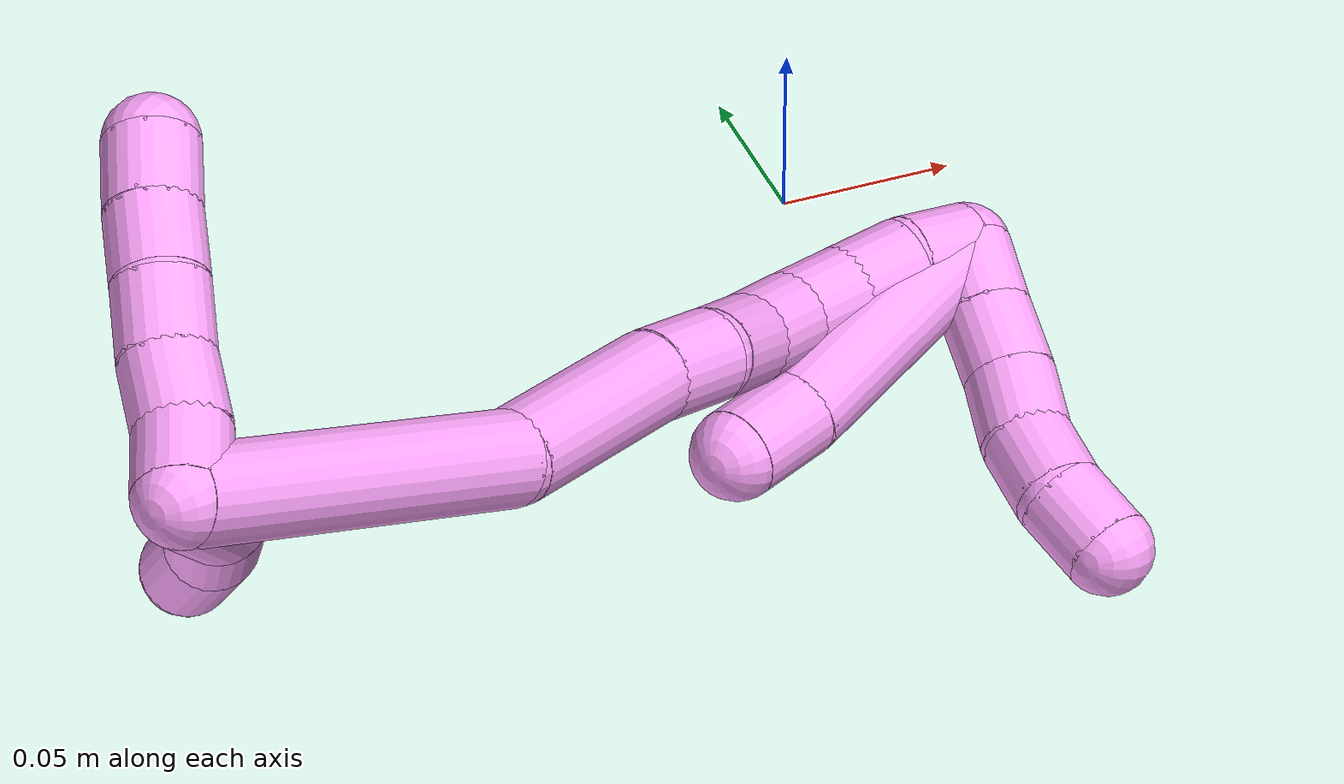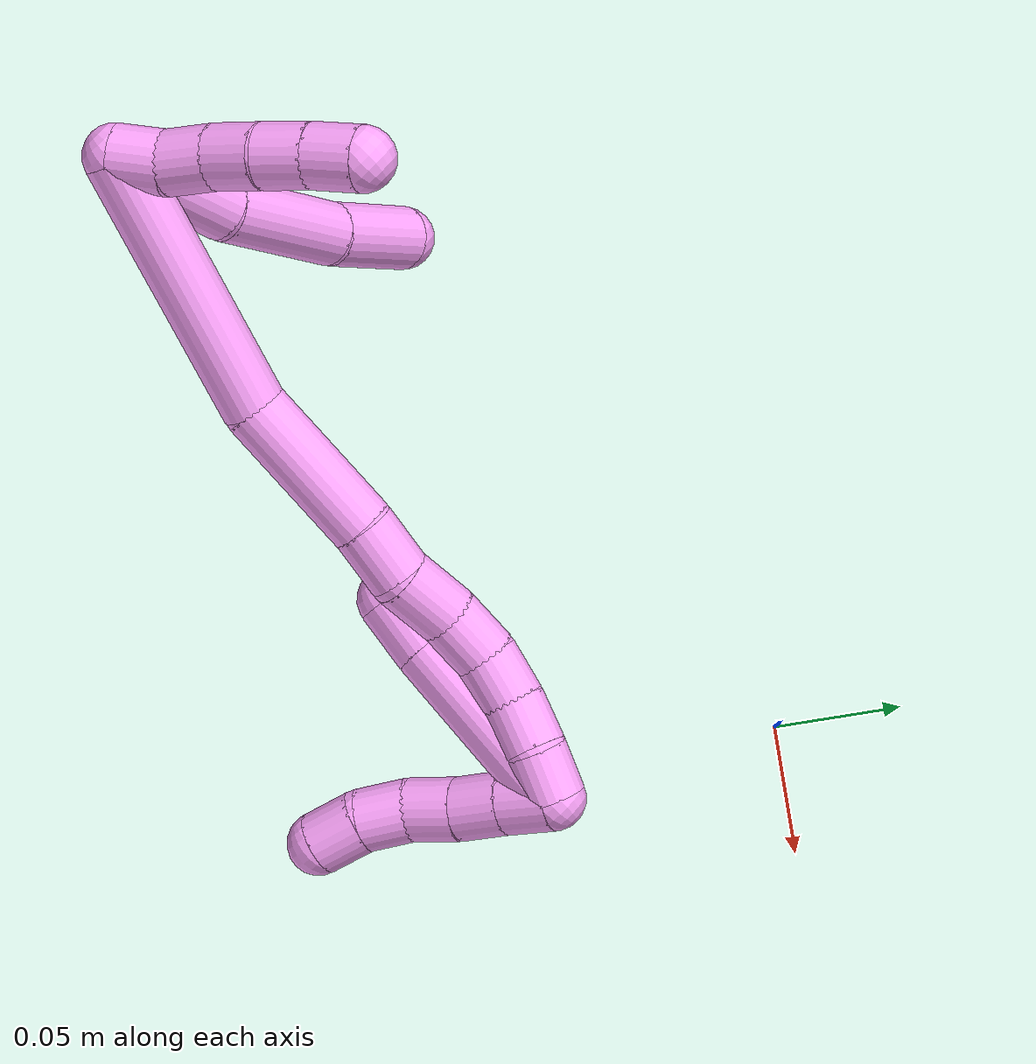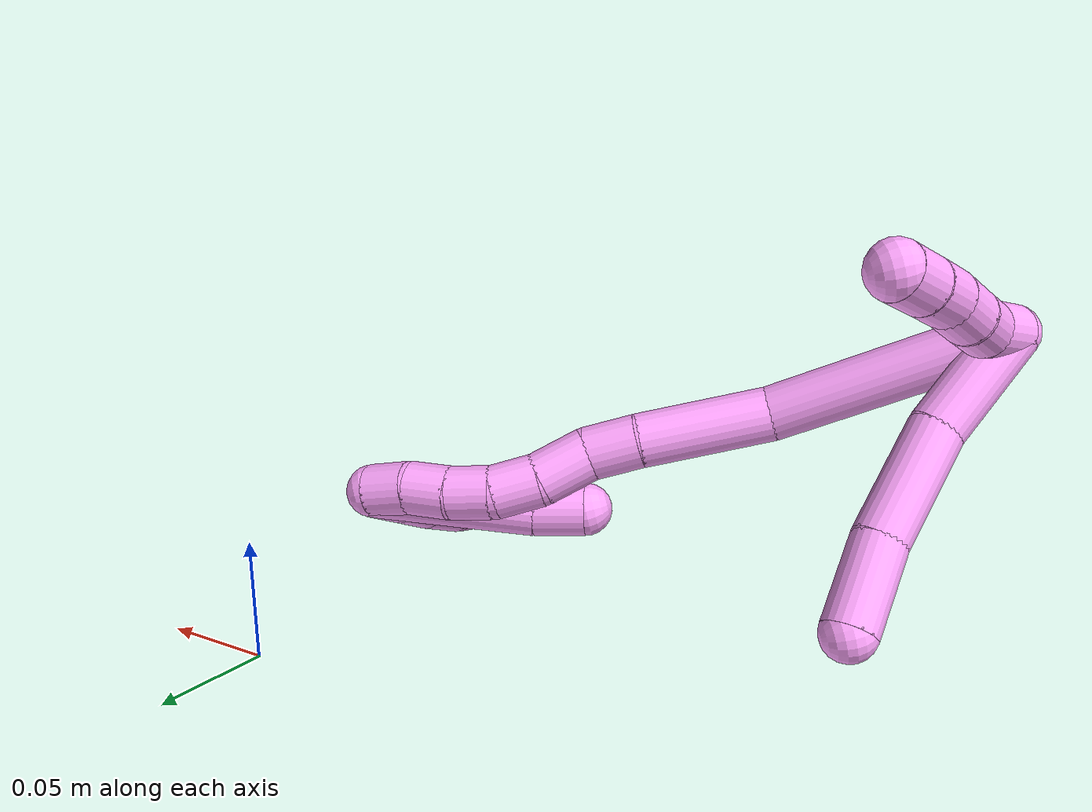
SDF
<sdf version="1.7">
 <world name="default">
  <model name="4">
   <static>0</static>
   <link name="4">
    <collision name="collision-cylinder-e_1_2_8">
     <pose>-0.015639 -0.005477 -0.021484 2.89198 -0.614343 -2.38834</pose>
     <geometry><cylinder><radius>0.0125</radius><length>0.054264</length></cylinder></geometry>
     <surface>
      <friction><ode><mu>1.16</mu><mu2>1.16</mu2><slip1>0</slip1><slip2>0</slip2></ode></friction>
      <contact><ode><kp>1e+06</kp><kd>1</kd><max_vel>0</max_vel><min_depth>0.001</min_depth></ode></contact>
     </surface>
    </collision>
    <visual name="visual-cylinder-e_1_2_8">
     <pose>-0.015639 -0.005477 -0.021484 2.89198 -0.614343 -2.38834</pose>
     <geometry><cylinder><radius>0.0125</radius><length>0.054264</length></cylinder></geometry>
     <material><ambient>1 0.65098 0.996078 1</ambient></material>
    </visual>
    <collision name="collision-cylinder-e_2_8_9">
     <pose>-0.051054 -0.015413 -0.061383 2.90403 -0.806771 -2.59627</pose>
     <geometry><cylinder><radius>0.0125</radius><length>0.054774</length></cylinder></geometry>
     <surface>
      <friction><ode><mu>1.16</mu><mu2>1.16</mu2><slip1>0</slip1><slip2>0</slip2></ode></friction>
      <contact><ode><kp>1e+06</kp><kd>1</kd><max_vel>0</max_vel><min_depth>0.001</min_depth></ode></contact>
     </surface>
    </collision>
    <visual name="visual-cylinder-e_2_8_9">
     <pose>-0.051054 -0.015413 -0.061383 2.90403 -0.806771 -2.59627</pose>
     <geometry><cylinder><radius>0.0125</radius><length>0.054774</length></cylinder></geometry>
     <material><ambient>1 0.65098 0.996078 1</ambient></material>
    </visual>
    <collision name="collision-cylinder-e_3_9_6">
     <pose>-0.08744 -0.022852 -0.091403 2.89019 -0.945919 -2.65737</pose>
     <geometry><cylinder><radius>0.0125</radius><length>0.040962</length></cylinder></geometry>
     <surface>
      <friction><ode><mu>1.16</mu><mu2>1.16</mu2><slip1>0</slip1><slip2>0</slip2></ode></friction>
      <contact><ode><kp>1e+06</kp><kd>1</kd><max_vel>0</max_vel><min_depth>0.001</min_depth></ode></contact>
     </surface>
    </collision>
    <visual name="visual-cylinder-e_3_9_6">
     <pose>-0.08744 -0.022852 -0.091403 2.89019 -0.945919 -2.65737</pose>
     <geometry><cylinder><radius>0.0125</radius><length>0.040962</length></cylinder></geometry>
     <material><ambient>1 0.65098 0.996078 1</ambient></material>
    </visual>
    <collision name="collision-cylinder-e_1_2_10">
     <pose>-0.001825 0.006498 -0.007379 -2.41962 -0.183483 0.478058</pose>
     <geometry><cylinder><radius>0.0125</radius><length>0.02</length></cylinder></geometry>
     <surface>
      <friction><ode><mu>1.16</mu><mu2>1.16</mu2><slip1>0</slip1><slip2>0</slip2></ode></friction>
      <contact><ode><kp>1e+06</kp><kd>1</kd><max_vel>0</max_vel><min_depth>0.001</min_depth></ode></contact>
     </surface>
    </collision>
    <visual name="visual-cylinder-e_1_2_10">
     <pose>-0.001825 0.006498 -0.007379 -2.41962 -0.183483 0.478058</pose>
     <geometry><cylinder><radius>0.0125</radius><length>0.02</length></cylinder></geometry>
     <material><ambient>1 0.65098 0.996078 1</ambient></material>
    </visual>
    <collision name="collision-cylinder-e_2_10_11">
     <pose>-0.005336 0.021332 -0.020017 -2.13353 -0.16948 0.305616</pose>
     <geometry><cylinder><radius>0.0125</radius><length>0.02</length></cylinder></geometry>
     <surface>
      <friction><ode><mu>1.16</mu><mu2>1.16</mu2><slip1>0</slip1><slip2>0</slip2></ode></friction>
      <contact><ode><kp>1e+06</kp><kd>1</kd><max_vel>0</max_vel><min_depth>0.001</min_depth></ode></contact>
     </surface>
    </collision>
    <visual name="visual-cylinder-e_2_10_11">
     <pose>-0.005336 0.021332 -0.020017 -2.13353 -0.16948 0.305616</pose>
     <geometry><cylinder><radius>0.0125</radius><length>0.02</length></cylinder></geometry>
     <material><ambient>1 0.65098 0.996078 1</ambient></material>
    </visual>
    <collision name="collision-cylinder-e_3_11_12">
     <pose>-0.007474 0.037936 -0.030884 -2.16694 -0.045147 0.085153</pose>
     <geometry><cylinder><radius>0.0125</radius><length>0.02</length></cylinder></geometry>
     <surface>
      <friction><ode><mu>1.16</mu><mu2>1.16</mu2><slip1>0</slip1><slip2>0</slip2></ode></friction>
      <contact><ode><kp>1e+06</kp><kd>1</kd><max_vel>0</max_vel><min_depth>0.001</min_depth></ode></contact>
     </surface>
    </collision>
    <visual name="visual-cylinder-e_3_11_12">
     <pose>-0.007474 0.037936 -0.030884 -2.16694 -0.045147 0.085153</pose>
     <geometry><cylinder><radius>0.0125</radius><length>0.02</length></cylinder></geometry>
     <material><ambient>1 0.65098 0.996078 1</ambient></material>
    </visual>
    <collision name="collision-cylinder-e_4_12_13">
     <pose>-0.009271 0.054 -0.042607 -2.23579 -0.13496 0.275986</pose>
     <geometry><cylinder><radius>0.0125</radius><length>0.02</length></cylinder></geometry>
     <surface>
      <friction><ode><mu>1.16</mu><mu2>1.16</mu2><slip1>0</slip1><slip2>0</slip2></ode></friction>
      <contact><ode><kp>1e+06</kp><kd>1</kd><max_vel>0</max_vel><min_depth>0.001</min_depth></ode></contact>
     </surface>
    </collision>
    <visual name="visual-cylinder-e_4_12_13">
     <pose>-0.009271 0.054 -0.042607 -2.23579 -0.13496 0.275986</pose>
     <geometry><cylinder><radius>0.0125</radius><length>0.02</length></cylinder></geometry>
     <material><ambient>1 0.65098 0.996078 1</ambient></material>
    </visual>
    <collision name="collision-cylinder-e_5_13_5">
     <pose>-0.011407 0.06939 -0.055182 -2.2758 -0.079185 0.171019</pose>
     <geometry><cylinder><radius>0.0125</radius><length>0.02</length></cylinder></geometry>
     <surface>
      <friction><ode><mu>1.16</mu><mu2>1.16</mu2><slip1>0</slip1><slip2>0</slip2></ode></friction>
      <contact><ode><kp>1e+06</kp><kd>1</kd><max_vel>0</max_vel><min_depth>0.001</min_depth></ode></contact>
     </surface>
    </collision>
    <visual name="visual-cylinder-e_5_13_5">
     <pose>-0.011407 0.06939 -0.055182 -2.2758 -0.079185 0.171019</pose>
     <geometry><cylinder><radius>0.0125</radius><length>0.02</length></cylinder></geometry>
     <material><ambient>1 0.65098 0.996078 1</ambient></material>
    </visual>
    <collision name="collision-cylinder-e_1_2_14">
     <pose>0.004883 -0.016322 -0.051388 2.83406 0.090316 0.567382</pose>
     <geometry><cylinder><radius>0.0125</radius><length>0.108277</length></cylinder></geometry>
     <surface>
      <friction><ode><mu>1.16</mu><mu2>1.16</mu2><slip1>0</slip1><slip2>0</slip2></ode></friction>
      <contact><ode><kp>1e+06</kp><kd>1</kd><max_vel>0</max_vel><min_depth>0.001</min_depth></ode></contact>
     </surface>
    </collision>
    <visual name="visual-cylinder-e_1_2_14">
     <pose>0.004883 -0.016322 -0.051388 2.83406 0.090316 0.567382</pose>
     <geometry><cylinder><radius>0.0125</radius><length>0.108277</length></cylinder></geometry>
     <material><ambient>1 0.65098 0.996078 1</ambient></material>
    </visual>
    <collision name="collision-cylinder-e_2_14_15">
     <pose>0.011252 -0.033158 -0.132995 3.12455 0.049143 2.47412</pose>
     <geometry><cylinder><radius>0.0125</radius><length>0.060519</length></cylinder></geometry>
     <surface>
      <friction><ode><mu>1.16</mu><mu2>1.16</mu2><slip1>0</slip1><slip2>0</slip2></ode></friction>
      <contact><ode><kp>1e+06</kp><kd>1</kd><max_vel>0</max_vel><min_depth>0.001</min_depth></ode></contact>
     </surface>
    </collision>
    <visual name="visual-cylinder-e_2_14_15">
     <pose>0.011252 -0.033158 -0.132995 3.12455 0.049143 2.47412</pose>
     <geometry><cylinder><radius>0.0125</radius><length>0.060519</length></cylinder></geometry>
     <material><ambient>1 0.65098 0.996078 1</ambient></material>
    </visual>
    <collision name="collision-cylinder-e_3_15_16">
     <pose>0.013585 -0.035307 -0.174992 3.00373 0.071072 0.951008</pose>
     <geometry><cylinder><radius>0.0125</radius><length>0.023842</length></cylinder></geometry>
     <surface>
      <friction><ode><mu>1.16</mu><mu2>1.16</mu2><slip1>0</slip1><slip2>0</slip2></ode></friction>
      <contact><ode><kp>1e+06</kp><kd>1</kd><max_vel>0</max_vel><min_depth>0.001</min_depth></ode></contact>
     </surface>
    </collision>
    <visual name="visual-cylinder-e_3_15_16">
     <pose>0.013585 -0.035307 -0.174992 3.00373 0.071072 0.951008</pose>
     <geometry><cylinder><radius>0.0125</radius><length>0.023842</length></cylinder></geometry>
     <material><ambient>1 0.65098 0.996078 1</ambient></material>
    </visual>
    <collision name="collision-cylinder-e_4_16_17">
     <pose>0.011593 -0.038319 -0.199124 3.03057 -0.224506 -2.22562</pose>
     <geometry><cylinder><radius>0.0125</radius><length>0.025502</length></cylinder></geometry>
     <surface>
      <friction><ode><mu>1.16</mu><mu2>1.16</mu2><slip1>0</slip1><slip2>0</slip2></ode></friction>
      <contact><ode><kp>1e+06</kp><kd>1</kd><max_vel>0</max_vel><min_depth>0.001</min_depth></ode></contact>
     </surface>
    </collision>
    <visual name="visual-cylinder-e_4_16_17">
     <pose>0.011593 -0.038319 -0.199124 3.03057 -0.224506 -2.22562</pose>
     <geometry><cylinder><radius>0.0125</radius><length>0.025502</length></cylinder></geometry>
     <material><ambient>1 0.65098 0.996078 1</ambient></material>
    </visual>
    <collision name="collision-cylinder-e_5_17_18">
     <pose>0.008745 -0.040348 -0.222249 3.08111 -0.000911 -0.03013</pose>
     <geometry><cylinder><radius>0.0125</radius><length>0.021581</length></cylinder></geometry>
     <surface>
      <friction><ode><mu>1.16</mu><mu2>1.16</mu2><slip1>0</slip1><slip2>0</slip2></ode></friction>
      <contact><ode><kp>1e+06</kp><kd>1</kd><max_vel>0</max_vel><min_depth>0.001</min_depth></ode></contact>
     </surface>
    </collision>
    <visual name="visual-cylinder-e_5_17_18">
     <pose>0.008745 -0.040348 -0.222249 3.08111 -0.000911 -0.03013</pose>
     <geometry><cylinder><radius>0.0125</radius><length>0.021581</length></cylinder></geometry>
     <material><ambient>1 0.65098 0.996078 1</ambient></material>
    </visual>
    <collision name="collision-cylinder-e_6_18_19">
     <pose>0.011634 -0.041602 -0.242685 3.07945 0.290859 2.72339</pose>
     <geometry><cylinder><radius>0.0125</radius><length>0.020217</length></cylinder></geometry>
     <surface>
      <friction><ode><mu>1.16</mu><mu2>1.16</mu2><slip1>0</slip1><slip2>0</slip2></ode></friction>
      <contact><ode><kp>1e+06</kp><kd>1</kd><max_vel>0</max_vel><min_depth>0.001</min_depth></ode></contact>
     </surface>
    </collision>
    <visual name="visual-cylinder-e_6_18_19">
     <pose>0.011634 -0.041602 -0.242685 3.07945 0.290859 2.72339</pose>
     <geometry><cylinder><radius>0.0125</radius><length>0.020217</length></cylinder></geometry>
     <material><ambient>1 0.65098 0.996078 1</ambient></material>
    </visual>
    <collision name="collision-cylinder-e_7_19_20">
     <pose>0.01883 -0.042759 -0.261383 3.08019 0.443393 2.87074</pose>
     <geometry><cylinder><radius>0.0125</radius><length>0.020036</length></cylinder></geometry>
     <surface>
      <friction><ode><mu>1.16</mu><mu2>1.16</mu2><slip1>0</slip1><slip2>0</slip2></ode></friction>
      <contact><ode><kp>1e+06</kp><kd>1</kd><max_vel>0</max_vel><min_depth>0.001</min_depth></ode></contact>
     </surface>
    </collision>
    <visual name="visual-cylinder-e_7_19_20">
     <pose>0.01883 -0.042759 -0.261383 3.08019 0.443393 2.87074</pose>
     <geometry><cylinder><radius>0.0125</radius><length>0.020036</length></cylinder></geometry>
     <material><ambient>1 0.65098 0.996078 1</ambient></material>
    </visual>
    <collision name="collision-cylinder-e_8_20_1">
     <pose>0.026307 -0.045682 -0.279609 2.8895 0.323129 1.81986</pose>
     <geometry><cylinder><radius>0.0125</radius><length>0.020026</length></cylinder></geometry>
     <surface>
      <friction><ode><mu>1.16</mu><mu2>1.16</mu2><slip1>0</slip1><slip2>0</slip2></ode></friction>
      <contact><ode><kp>1e+06</kp><kd>1</kd><max_vel>0</max_vel><min_depth>0.001</min_depth></ode></contact>
     </surface>
    </collision>
    <visual name="visual-cylinder-e_8_20_1">
     <pose>0.026307 -0.045682 -0.279609 2.8895 0.323129 1.81986</pose>
     <geometry><cylinder><radius>0.0125</radius><length>0.020026</length></cylinder></geometry>
     <material><ambient>1 0.65098 0.996078 1</ambient></material>
    </visual>
    <collision name="collision-cylinder-e_1_1_21">
     <pose>0.031322 -0.05655 -0.283865 1.04437 0.184523 0.106388</pose>
     <geometry><cylinder><radius>0.0125</radius><length>0.02</length></cylinder></geometry>
     <surface>
      <friction><ode><mu>1.16</mu><mu2>1.16</mu2><slip1>0</slip1><slip2>0</slip2></ode></friction>
      <contact><ode><kp>1e+06</kp><kd>1</kd><max_vel>0</max_vel><min_depth>0.001</min_depth></ode></contact>
     </surface>
    </collision>
    <visual name="visual-cylinder-e_1_1_21">
     <pose>0.031322 -0.05655 -0.283865 1.04437 0.184523 0.106388</pose>
     <geometry><cylinder><radius>0.0125</radius><length>0.02</length></cylinder></geometry>
     <material><ambient>1 0.65098 0.996078 1</ambient></material>
    </visual>
    <collision name="collision-cylinder-e_2_21_22">
     <pose>0.035194 -0.073683 -0.27431 1.07981 0.205134 0.123215</pose>
     <geometry><cylinder><radius>0.0125</radius><length>0.02</length></cylinder></geometry>
     <surface>
      <friction><ode><mu>1.16</mu><mu2>1.16</mu2><slip1>0</slip1><slip2>0</slip2></ode></friction>
      <contact><ode><kp>1e+06</kp><kd>1</kd><max_vel>0</max_vel><min_depth>0.001</min_depth></ode></contact>
     </surface>
    </collision>
    <visual name="visual-cylinder-e_2_21_22">
     <pose>0.035194 -0.073683 -0.27431 1.07981 0.205134 0.123215</pose>
     <geometry><cylinder><radius>0.0125</radius><length>0.02</length></cylinder></geometry>
     <material><ambient>1 0.65098 0.996078 1</ambient></material>
    </visual>
    <collision name="collision-cylinder-e_3_22_23">
     <pose>0.039163 -0.090255 -0.263928 0.942593 0.194451 0.099323</pose>
     <geometry><cylinder><radius>0.0125</radius><length>0.02</length></cylinder></geometry>
     <surface>
      <friction><ode><mu>1.16</mu><mu2>1.16</mu2><slip1>0</slip1><slip2>0</slip2></ode></friction>
      <contact><ode><kp>1e+06</kp><kd>1</kd><max_vel>0</max_vel><min_depth>0.001</min_depth></ode></contact>
     </surface>
    </collision>
    <visual name="visual-cylinder-e_3_22_23">
     <pose>0.039163 -0.090255 -0.263928 0.942593 0.194451 0.099323</pose>
     <geometry><cylinder><radius>0.0125</radius><length>0.02</length></cylinder></geometry>
     <material><ambient>1 0.65098 0.996078 1</ambient></material>
    </visual>
    <collision name="collision-cylinder-e_4_23_24">
     <pose>0.045286 -0.105896 -0.253354 1.01283 0.432487 0.242499</pose>
     <geometry><cylinder><radius>0.0125</radius><length>0.02</length></cylinder></geometry>
     <surface>
      <friction><ode><mu>1.16</mu><mu2>1.16</mu2><slip1>0</slip1><slip2>0</slip2></ode></friction>
      <contact><ode><kp>1e+06</kp><kd>1</kd><max_vel>0</max_vel><min_depth>0.001</min_depth></ode></contact>
     </surface>
    </collision>
    <visual name="visual-cylinder-e_4_23_24">
     <pose>0.045286 -0.105896 -0.253354 1.01283 0.432487 0.242499</pose>
     <geometry><cylinder><radius>0.0125</radius><length>0.02</length></cylinder></geometry>
     <material><ambient>1 0.65098 0.996078 1</ambient></material>
    </visual>
    <collision name="collision-cylinder-e_5_24_4">
     <pose>0.054125 -0.122147 -0.246243 1.30752 0.483343 0.373303</pose>
     <geometry><cylinder><radius>0.0125</radius><length>0.02</length></cylinder></geometry>
     <surface>
      <friction><ode><mu>1.16</mu><mu2>1.16</mu2><slip1>0</slip1><slip2>0</slip2></ode></friction>
      <contact><ode><kp>1e+06</kp><kd>1</kd><max_vel>0</max_vel><min_depth>0.001</min_depth></ode></contact>
     </surface>
    </collision>
    <visual name="visual-cylinder-e_5_24_4">
     <pose>0.054125 -0.122147 -0.246243 1.30752 0.483343 0.373303</pose>
     <geometry><cylinder><radius>0.0125</radius><length>0.02</length></cylinder></geometry>
     <material><ambient>1 0.65098 0.996078 1</ambient></material>
    </visual>
    <collision name="collision-cylinder-e_1_1_25">
     <pose>0.018825 -0.055536 -0.253206 0.207251 -0.28511 -0.029851</pose>
     <geometry><cylinder><radius>0.0125</radius><length>0.075814</length></cylinder></geometry>
     <surface>
      <friction><ode><mu>1.16</mu><mu2>1.16</mu2><slip1>0</slip1><slip2>0</slip2></ode></friction>
      <contact><ode><kp>1e+06</kp><kd>1</kd><max_vel>0</max_vel><min_depth>0.001</min_depth></ode></contact>
     </surface>
    </collision>
    <visual name="visual-cylinder-e_1_1_25">
     <pose>0.018825 -0.055536 -0.253206 0.207251 -0.28511 -0.029851</pose>
     <geometry><cylinder><radius>0.0125</radius><length>0.075814</length></cylinder></geometry>
     <material><ambient>1 0.65098 0.996078 1</ambient></material>
    </visual>
    <collision name="collision-cylinder-e_2_25_3">
     <pose>0.005227 -0.063597 -0.205891 0.049146 -0.245251 -0.006058</pose>
     <geometry><cylinder><radius>0.0125</radius><length>0.024186</length></cylinder></geometry>
     <surface>
      <friction><ode><mu>1.16</mu><mu2>1.16</mu2><slip1>0</slip1><slip2>0</slip2></ode></friction>
      <contact><ode><kp>1e+06</kp><kd>1</kd><max_vel>0</max_vel><min_depth>0.001</min_depth></ode></contact>
     </surface>
    </collision>
    <visual name="visual-cylinder-e_2_25_3">
     <pose>0.005227 -0.063597 -0.205891 0.049146 -0.245251 -0.006058</pose>
     <geometry><cylinder><radius>0.0125</radius><length>0.024186</length></cylinder></geometry>
     <material><ambient>1 0.65098 0.996078 1</ambient></material>
    </visual>
    <collision name="collision-sphere-3">
     <pose>0.002291 -0.064174 -0.194174 0 -0 0</pose>
     <geometry><sphere><radius>0.0125</radius></sphere></geometry>
     <surface>
      <friction><ode><mu>1.16</mu><mu2>1.16</mu2><slip1>0</slip1><slip2>0</slip2></ode></friction>
      <contact><ode><kp>1e+06</kp><kd>1</kd><max_vel>0</max_vel><min_depth>0.001</min_depth></ode></contact>
     </surface>
    </collision>
    <visual name="visual-sphere-3">
     <pose>0.002291 -0.064174 -0.194174 0 -0 0</pose>
     <geometry><sphere><radius>0.0125</radius></sphere></geometry>
     <material><ambient>1 0.65098 0.996078 1</ambient></material>
    </visual>
    <collision name="collision-sphere-25">
     <pose>0.008163 -0.063021 -0.217608 0 -0 0</pose>
     <geometry><sphere><radius>0.0125</radius></sphere></geometry>
     <surface>
      <friction><ode><mu>1.16</mu><mu2>1.16</mu2><slip1>0</slip1><slip2>0</slip2></ode></friction>
      <contact><ode><kp>1e+06</kp><kd>1</kd><max_vel>0</max_vel><min_depth>0.001</min_depth></ode></contact>
     </surface>
    </collision>
    <visual name="visual-sphere-25">
     <pose>0.008163 -0.063021 -0.217608 0 -0 0</pose>
     <geometry><sphere><radius>0.0125</radius></sphere></geometry>
     <material><ambient>1 0.65098 0.996078 1</ambient></material>
    </visual>
    <collision name="collision-sphere-4">
     <pose>0.058772 -0.130697 -0.243939 0 -0 0</pose>
     <geometry><sphere><radius>0.0125</radius></sphere></geometry>
     <surface>
      <friction><ode><mu>1.16</mu><mu2>1.16</mu2><slip1>0</slip1><slip2>0</slip2></ode></friction>
      <contact><ode><kp>1e+06</kp><kd>1</kd><max_vel>0</max_vel><min_depth>0.001</min_depth></ode></contact>
     </surface>
    </collision>
    <visual name="visual-sphere-4">
     <pose>0.058772 -0.130697 -0.243939 0 -0 0</pose>
     <geometry><sphere><radius>0.0125</radius></sphere></geometry>
     <material><ambient>1 0.65098 0.996078 1</ambient></material>
    </visual>
    <collision name="collision-sphere-24">
     <pose>0.049478 -0.113598 -0.248547 0 -0 0</pose>
     <geometry><sphere><radius>0.0125</radius></sphere></geometry>
     <surface>
      <friction><ode><mu>1.16</mu><mu2>1.16</mu2><slip1>0</slip1><slip2>0</slip2></ode></friction>
      <contact><ode><kp>1e+06</kp><kd>1</kd><max_vel>0</max_vel><min_depth>0.001</min_depth></ode></contact>
     </surface>
    </collision>
    <visual name="visual-sphere-24">
     <pose>0.049478 -0.113598 -0.248547 0 -0 0</pose>
     <geometry><sphere><radius>0.0125</radius></sphere></geometry>
     <material><ambient>1 0.65098 0.996078 1</ambient></material>
    </visual>
    <collision name="collision-sphere-23">
     <pose>0.041095 -0.098194 -0.258161 0 -0 0</pose>
     <geometry><sphere><radius>0.0125</radius></sphere></geometry>
     <surface>
      <friction><ode><mu>1.16</mu><mu2>1.16</mu2><slip1>0</slip1><slip2>0</slip2></ode></friction>
      <contact><ode><kp>1e+06</kp><kd>1</kd><max_vel>0</max_vel><min_depth>0.001</min_depth></ode></contact>
     </surface>
    </collision>
    <visual name="visual-sphere-23">
     <pose>0.041095 -0.098194 -0.258161 0 -0 0</pose>
     <geometry><sphere><radius>0.0125</radius></sphere></geometry>
     <material><ambient>1 0.65098 0.996078 1</ambient></material>
    </visual>
    <collision name="collision-sphere-22">
     <pose>0.03723 -0.082317 -0.269694 0 -0 0</pose>
     <geometry><sphere><radius>0.0125</radius></sphere></geometry>
     <surface>
      <friction><ode><mu>1.16</mu><mu2>1.16</mu2><slip1>0</slip1><slip2>0</slip2></ode></friction>
      <contact><ode><kp>1e+06</kp><kd>1</kd><max_vel>0</max_vel><min_depth>0.001</min_depth></ode></contact>
     </surface>
    </collision>
    <visual name="visual-sphere-22">
     <pose>0.03723 -0.082317 -0.269694 0 -0 0</pose>
     <geometry><sphere><radius>0.0125</radius></sphere></geometry>
     <material><ambient>1 0.65098 0.996078 1</ambient></material>
    </visual>
    <collision name="collision-sphere-21">
     <pose>0.033157 -0.065049 -0.278926 0 -0 0</pose>
     <geometry><sphere><radius>0.0125</radius></sphere></geometry>
     <surface>
      <friction><ode><mu>1.16</mu><mu2>1.16</mu2><slip1>0</slip1><slip2>0</slip2></ode></friction>
      <contact><ode><kp>1e+06</kp><kd>1</kd><max_vel>0</max_vel><min_depth>0.001</min_depth></ode></contact>
     </surface>
    </collision>
    <visual name="visual-sphere-21">
     <pose>0.033157 -0.065049 -0.278926 0 -0 0</pose>
     <geometry><sphere><radius>0.0125</radius></sphere></geometry>
     <material><ambient>1 0.65098 0.996078 1</ambient></material>
    </visual>
    <collision name="collision-sphere-1">
     <pose>0.029487 -0.048051 -0.288804 0 -0 0</pose>
     <geometry><sphere><radius>0.0125</radius></sphere></geometry>
     <surface>
      <friction><ode><mu>1.16</mu><mu2>1.16</mu2><slip1>0</slip1><slip2>0</slip2></ode></friction>
      <contact><ode><kp>1e+06</kp><kd>1</kd><max_vel>0</max_vel><min_depth>0.001</min_depth></ode></contact>
     </surface>
    </collision>
    <visual name="visual-sphere-1">
     <pose>0.029487 -0.048051 -0.288804 0 -0 0</pose>
     <geometry><sphere><radius>0.0125</radius></sphere></geometry>
     <material><ambient>1 0.65098 0.996078 1</ambient></material>
    </visual>
    <collision name="collision-sphere-11">
     <pose>-0.007022 0.029669 -0.025275 0 -0 0</pose>
     <geometry><sphere><radius>0.0125</radius></sphere></geometry>
     <surface>
      <friction><ode><mu>1.16</mu><mu2>1.16</mu2><slip1>0</slip1><slip2>0</slip2></ode></friction>
      <contact><ode><kp>1e+06</kp><kd>1</kd><max_vel>0</max_vel><min_depth>0.001</min_depth></ode></contact>
     </surface>
    </collision>
    <visual name="visual-sphere-11">
     <pose>-0.007022 0.029669 -0.025275 0 -0 0</pose>
     <geometry><sphere><radius>0.0125</radius></sphere></geometry>
     <material><ambient>1 0.65098 0.996078 1</ambient></material>
    </visual>
    <collision name="collision-sphere-10">
     <pose>-0.003649 0.012996 -0.014758 0 -0 0</pose>
     <geometry><sphere><radius>0.0125</radius></sphere></geometry>
     <surface>
      <friction><ode><mu>1.16</mu><mu2>1.16</mu2><slip1>0</slip1><slip2>0</slip2></ode></friction>
      <contact><ode><kp>1e+06</kp><kd>1</kd><max_vel>0</max_vel><min_depth>0.001</min_depth></ode></contact>
     </surface>
    </collision>
    <visual name="visual-sphere-10">
     <pose>-0.003649 0.012996 -0.014758 0 -0 0</pose>
     <geometry><sphere><radius>0.0125</radius></sphere></geometry>
     <material><ambient>1 0.65098 0.996078 1</ambient></material>
    </visual>
    <collision name="collision-sphere-6">
     <pose>-0.104051 -0.025832 -0.103007 0 -0 0</pose>
     <geometry><sphere><radius>0.0125</radius></sphere></geometry>
     <surface>
      <friction><ode><mu>1.16</mu><mu2>1.16</mu2><slip1>0</slip1><slip2>0</slip2></ode></friction>
      <contact><ode><kp>1e+06</kp><kd>1</kd><max_vel>0</max_vel><min_depth>0.001</min_depth></ode></contact>
     </surface>
    </collision>
    <visual name="visual-sphere-6">
     <pose>-0.104051 -0.025832 -0.103007 0 -0 0</pose>
     <geometry><sphere><radius>0.0125</radius></sphere></geometry>
     <material><ambient>1 0.65098 0.996078 1</ambient></material>
    </visual>
    <collision name="collision-sphere-9">
     <pose>-0.070829 -0.019872 -0.079798 0 -0 0</pose>
     <geometry><sphere><radius>0.0125</radius></sphere></geometry>
     <surface>
      <friction><ode><mu>1.16</mu><mu2>1.16</mu2><slip1>0</slip1><slip2>0</slip2></ode></friction>
      <contact><ode><kp>1e+06</kp><kd>1</kd><max_vel>0</max_vel><min_depth>0.001</min_depth></ode></contact>
     </surface>
    </collision>
    <visual name="visual-sphere-9">
     <pose>-0.070829 -0.019872 -0.079798 0 -0 0</pose>
     <geometry><sphere><radius>0.0125</radius></sphere></geometry>
     <material><ambient>1 0.65098 0.996078 1</ambient></material>
    </visual>
    <collision name="collision-sphere-2">
     <geometry><sphere><radius>0.0125</radius></sphere></geometry>
     <surface>
      <friction><ode><mu>1.16</mu><mu2>1.16</mu2><slip1>0</slip1><slip2>0</slip2></ode></friction>
      <contact><ode><kp>1e+06</kp><kd>1</kd><max_vel>0</max_vel><min_depth>0.001</min_depth></ode></contact>
     </surface>
    </collision>
    <visual name="visual-sphere-2">
     <geometry><sphere><radius>0.0125</radius></sphere></geometry>
     <material><ambient>1 0.65098 0.996078 1</ambient></material>
    </visual>
    <collision name="collision-sphere-19">
     <pose>0.014532 -0.042203 -0.252351 0 -0 0</pose>
     <geometry><sphere><radius>0.0125</radius></sphere></geometry>
     <surface>
      <friction><ode><mu>1.16</mu><mu2>1.16</mu2><slip1>0</slip1><slip2>0</slip2></ode></friction>
      <contact><ode><kp>1e+06</kp><kd>1</kd><max_vel>0</max_vel><min_depth>0.001</min_depth></ode></contact>
     </surface>
    </collision>
    <visual name="visual-sphere-19">
     <pose>0.014532 -0.042203 -0.252351 0 -0 0</pose>
     <geometry><sphere><radius>0.0125</radius></sphere></geometry>
     <material><ambient>1 0.65098 0.996078 1</ambient></material>
    </visual>
    <collision name="collision-sphere-8">
     <pose>-0.031279 -0.010954 -0.042967 0 -0 0</pose>
     <geometry><sphere><radius>0.0125</radius></sphere></geometry>
     <surface>
      <friction><ode><mu>1.16</mu><mu2>1.16</mu2><slip1>0</slip1><slip2>0</slip2></ode></friction>
      <contact><ode><kp>1e+06</kp><kd>1</kd><max_vel>0</max_vel><min_depth>0.001</min_depth></ode></contact>
     </surface>
    </collision>
    <visual name="visual-sphere-8">
     <pose>-0.031279 -0.010954 -0.042967 0 -0 0</pose>
     <geometry><sphere><radius>0.0125</radius></sphere></geometry>
     <material><ambient>1 0.65098 0.996078 1</ambient></material>
    </visual>
    <collision name="collision-sphere-12">
     <pose>-0.007925 0.046202 -0.036493 0 -0 0</pose>
     <geometry><sphere><radius>0.0125</radius></sphere></geometry>
     <surface>
      <friction><ode><mu>1.16</mu><mu2>1.16</mu2><slip1>0</slip1><slip2>0</slip2></ode></friction>
      <contact><ode><kp>1e+06</kp><kd>1</kd><max_vel>0</max_vel><min_depth>0.001</min_depth></ode></contact>
     </surface>
    </collision>
    <visual name="visual-sphere-12">
     <pose>-0.007925 0.046202 -0.036493 0 -0 0</pose>
     <geometry><sphere><radius>0.0125</radius></sphere></geometry>
     <material><ambient>1 0.65098 0.996078 1</ambient></material>
    </visual>
    <collision name="collision-sphere-13">
     <pose>-0.010616 0.061798 -0.048722 0 -0 0</pose>
     <geometry><sphere><radius>0.0125</radius></sphere></geometry>
     <surface>
      <friction><ode><mu>1.16</mu><mu2>1.16</mu2><slip1>0</slip1><slip2>0</slip2></ode></friction>
      <contact><ode><kp>1e+06</kp><kd>1</kd><max_vel>0</max_vel><min_depth>0.001</min_depth></ode></contact>
     </surface>
    </collision>
    <visual name="visual-sphere-13">
     <pose>-0.010616 0.061798 -0.048722 0 -0 0</pose>
     <geometry><sphere><radius>0.0125</radius></sphere></geometry>
     <material><ambient>1 0.65098 0.996078 1</ambient></material>
    </visual>
    <collision name="collision-sphere-5">
     <pose>-0.012198 0.076982 -0.061642 0 -0 0</pose>
     <geometry><sphere><radius>0.0125</radius></sphere></geometry>
     <surface>
      <friction><ode><mu>1.16</mu><mu2>1.16</mu2><slip1>0</slip1><slip2>0</slip2></ode></friction>
      <contact><ode><kp>1e+06</kp><kd>1</kd><max_vel>0</max_vel><min_depth>0.001</min_depth></ode></contact>
     </surface>
    </collision>
    <visual name="visual-sphere-5">
     <pose>-0.012198 0.076982 -0.061642 0 -0 0</pose>
     <geometry><sphere><radius>0.0125</radius></sphere></geometry>
     <material><ambient>1 0.65098 0.996078 1</ambient></material>
    </visual>
    <collision name="collision-sphere-14">
     <pose>0.009766 -0.032643 -0.102777 0 -0 0</pose>
     <geometry><sphere><radius>0.0125</radius></sphere></geometry>
     <surface>
      <friction><ode><mu>1.16</mu><mu2>1.16</mu2><slip1>0</slip1><slip2>0</slip2></ode></friction>
      <contact><ode><kp>1e+06</kp><kd>1</kd><max_vel>0</max_vel><min_depth>0.001</min_depth></ode></contact>
     </surface>
    </collision>
    <visual name="visual-sphere-14">
     <pose>0.009766 -0.032643 -0.102777 0 -0 0</pose>
     <geometry><sphere><radius>0.0125</radius></sphere></geometry>
     <material><ambient>1 0.65098 0.996078 1</ambient></material>
    </visual>
    <collision name="collision-sphere-15">
     <pose>0.012739 -0.033673 -0.163214 0 -0 0</pose>
     <geometry><sphere><radius>0.0125</radius></sphere></geometry>
     <surface>
      <friction><ode><mu>1.16</mu><mu2>1.16</mu2><slip1>0</slip1><slip2>0</slip2></ode></friction>
      <contact><ode><kp>1e+06</kp><kd>1</kd><max_vel>0</max_vel><min_depth>0.001</min_depth></ode></contact>
     </surface>
    </collision>
    <visual name="visual-sphere-15">
     <pose>0.012739 -0.033673 -0.163214 0 -0 0</pose>
     <geometry><sphere><radius>0.0125</radius></sphere></geometry>
     <material><ambient>1 0.65098 0.996078 1</ambient></material>
    </visual>
    <collision name="collision-sphere-16">
     <pose>0.014432 -0.036941 -0.18677 0 -0 0</pose>
     <geometry><sphere><radius>0.0125</radius></sphere></geometry>
     <surface>
      <friction><ode><mu>1.16</mu><mu2>1.16</mu2><slip1>0</slip1><slip2>0</slip2></ode></friction>
      <contact><ode><kp>1e+06</kp><kd>1</kd><max_vel>0</max_vel><min_depth>0.001</min_depth></ode></contact>
     </surface>
    </collision>
    <visual name="visual-sphere-16">
     <pose>0.014432 -0.036941 -0.18677 0 -0 0</pose>
     <geometry><sphere><radius>0.0125</radius></sphere></geometry>
     <material><ambient>1 0.65098 0.996078 1</ambient></material>
    </visual>
    <collision name="collision-sphere-17">
     <pose>0.008754 -0.039696 -0.211479 0 -0 0</pose>
     <geometry><sphere><radius>0.0125</radius></sphere></geometry>
     <surface>
      <friction><ode><mu>1.16</mu><mu2>1.16</mu2><slip1>0</slip1><slip2>0</slip2></ode></friction>
      <contact><ode><kp>1e+06</kp><kd>1</kd><max_vel>0</max_vel><min_depth>0.001</min_depth></ode></contact>
     </surface>
    </collision>
    <visual name="visual-sphere-17">
     <pose>0.008754 -0.039696 -0.211479 0 -0 0</pose>
     <geometry><sphere><radius>0.0125</radius></sphere></geometry>
     <material><ambient>1 0.65098 0.996078 1</ambient></material>
    </visual>
    <collision name="collision-sphere-18">
     <pose>0.008735 -0.041 -0.23302 0 -0 0</pose>
     <geometry><sphere><radius>0.0125</radius></sphere></geometry>
     <surface>
      <friction><ode><mu>1.16</mu><mu2>1.16</mu2><slip1>0</slip1><slip2>0</slip2></ode></friction>
      <contact><ode><kp>1e+06</kp><kd>1</kd><max_vel>0</max_vel><min_depth>0.001</min_depth></ode></contact>
     </surface>
    </collision>
    <visual name="visual-sphere-18">
     <pose>0.008735 -0.041 -0.23302 0 -0 0</pose>
     <geometry><sphere><radius>0.0125</radius></sphere></geometry>
     <material><ambient>1 0.65098 0.996078 1</ambient></material>
    </visual>
    <collision name="collision-sphere-20">
     <pose>0.023128 -0.043314 -0.270415 0 -0 0</pose>
     <geometry><sphere><radius>0.0125</radius></sphere></geometry>
     <surface>
      <friction><ode><mu>1.16</mu><mu2>1.16</mu2><slip1>0</slip1><slip2>0</slip2></ode></friction>
      <contact><ode><kp>1e+06</kp><kd>1</kd><max_vel>0</max_vel><min_depth>0.001</min_depth></ode></contact>
     </surface>
    </collision>
    <visual name="visual-sphere-20">
     <pose>0.023128 -0.043314 -0.270415 0 -0 0</pose>
     <geometry><sphere><radius>0.0125</radius></sphere></geometry>
     <material><ambient>1 0.65098 0.996078 1</ambient></material>
    </visual>
    <inertial>
     <pose>0.001173 -0.029453 -0.140541 0 -0 0</pose>
     <mass>0.75</mass>
     <inertia><ixx>0.000158</ixx><ixy>0</ixy><ixz>0</ixz><iyy>5.8e-05</iyy><iyz>0</iyz><izz>5e-05</izz></inertia>
    </inertial>
   </link>
   <pose>-0.239716 -0.213105 0.124488 1.28488 -0.677698 -0.75038</pose>
  </model>
 </world>
</sdf>
